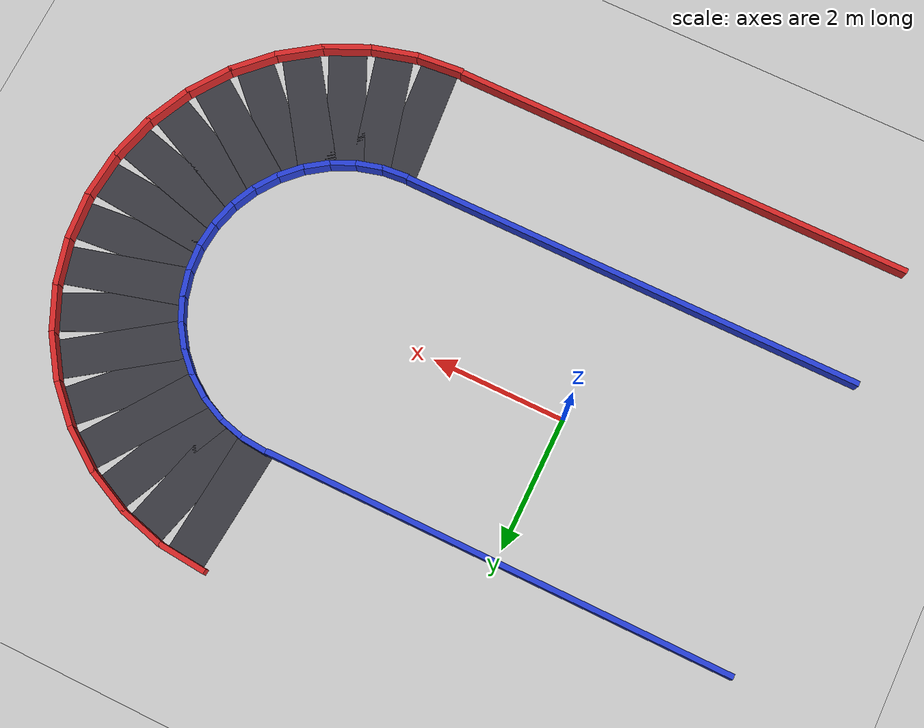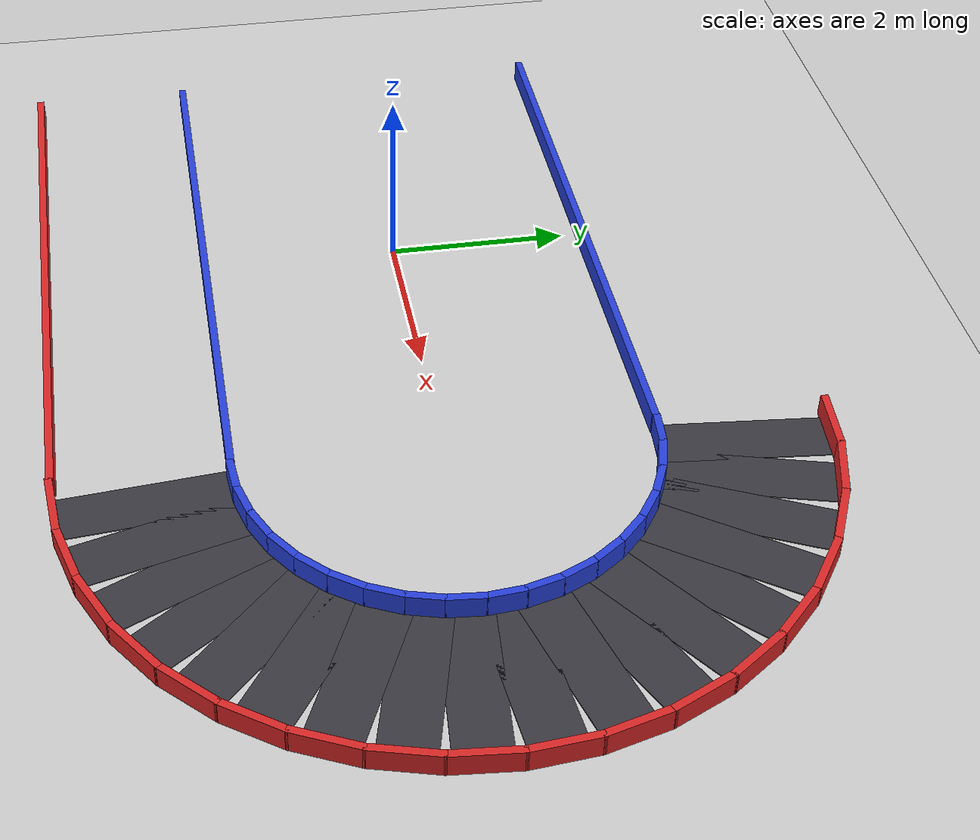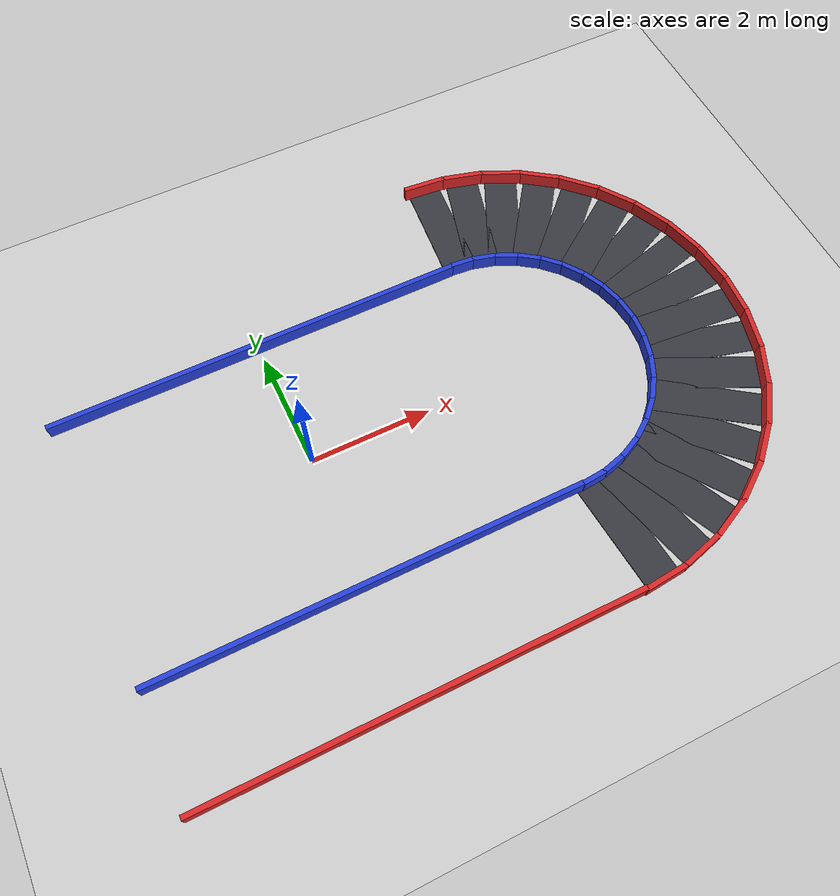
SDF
<sdf version="1.6">
 <world name="mini4wd_single_track">
  <include><uri>model://ground_plane</uri></include>
  <include><uri>model://sun</uri></include>
  <model name="flr_c_e_0">
   <static>true</static>
   <pose>3.770 -3.088 0.005 0 0 0.087</pose>
   <link name="l">
    <collision name="c"><geometry><box><size>0.568 1.8 0.01</size></box></geometry></collision>
    <visual name="v">
     <geometry><box><size>0.568 1.8 0.01</size></box></geometry>
     <material><ambient>0.22 0.22 0.25 1</ambient><diffuse>0.22 0.22 0.25 1</diffuse></material>
    </visual>
   </link>
  </model>
  <model name="flr_c_e_1">
   <static>true</static>
   <pose>4.302 -2.994 0.005 0 0 0.262</pose>
   <link name="l">
    <collision name="c"><geometry><box><size>0.568 1.8 0.01</size></box></geometry></collision>
    <visual name="v">
     <geometry><box><size>0.568 1.8 0.01</size></box></geometry>
     <material><ambient>0.22 0.22 0.25 1</ambient><diffuse>0.22 0.22 0.25 1</diffuse></material>
    </visual>
   </link>
  </model>
  <model name="flr_c_e_2">
   <static>true</static>
   <pose>4.810 -2.810 0.005 0 0 0.436</pose>
   <link name="l">
    <collision name="c"><geometry><box><size>0.568 1.8 0.01</size></box></geometry></collision>
    <visual name="v">
     <geometry><box><size>0.568 1.8 0.01</size></box></geometry>
     <material><ambient>0.22 0.22 0.25 1</ambient><diffuse>0.22 0.22 0.25 1</diffuse></material>
    </visual>
   </link>
  </model>
  <model name="flr_c_e_3">
   <static>true</static>
   <pose>5.278 -2.539 0.005 0 0 0.611</pose>
   <link name="l">
    <collision name="c"><geometry><box><size>0.568 1.8 0.01</size></box></geometry></collision>
    <visual name="v">
     <geometry><box><size>0.568 1.8 0.01</size></box></geometry>
     <material><ambient>0.22 0.22 0.25 1</ambient><diffuse>0.22 0.22 0.25 1</diffuse></material>
    </visual>
   </link>
  </model>
  <model name="flr_c_e_4">
   <static>true</static>
   <pose>5.692 -2.192 0.005 0 0 0.785</pose>
   <link name="l">
    <collision name="c"><geometry><box><size>0.568 1.8 0.01</size></box></geometry></collision>
    <visual name="v">
     <geometry><box><size>0.568 1.8 0.01</size></box></geometry>
     <material><ambient>0.22 0.22 0.25 1</ambient><diffuse>0.22 0.22 0.25 1</diffuse></material>
    </visual>
   </link>
  </model>
  <model name="flr_c_e_5">
   <static>true</static>
   <pose>6.039 -1.778 0.005 0 0 0.960</pose>
   <link name="l">
    <collision name="c"><geometry><box><size>0.568 1.8 0.01</size></box></geometry></collision>
    <visual name="v">
     <geometry><box><size>0.568 1.8 0.01</size></box></geometry>
     <material><ambient>0.22 0.22 0.25 1</ambient><diffuse>0.22 0.22 0.25 1</diffuse></material>
    </visual>
   </link>
  </model>
  <model name="flr_c_e_6">
   <static>true</static>
   <pose>6.310 -1.310 0.005 0 0 1.134</pose>
   <link name="l">
    <collision name="c"><geometry><box><size>0.568 1.8 0.01</size></box></geometry></collision>
    <visual name="v">
     <geometry><box><size>0.568 1.8 0.01</size></box></geometry>
     <material><ambient>0.22 0.22 0.25 1</ambient><diffuse>0.22 0.22 0.25 1</diffuse></material>
    </visual>
   </link>
  </model>
  <model name="flr_c_e_7">
   <static>true</static>
   <pose>6.494 -0.802 0.005 0 0 1.309</pose>
   <link name="l">
    <collision name="c"><geometry><box><size>0.568 1.8 0.01</size></box></geometry></collision>
    <visual name="v">
     <geometry><box><size>0.568 1.8 0.01</size></box></geometry>
     <material><ambient>0.22 0.22 0.25 1</ambient><diffuse>0.22 0.22 0.25 1</diffuse></material>
    </visual>
   </link>
  </model>
  <model name="flr_c_e_8">
   <static>true</static>
   <pose>6.588 -0.270 0.005 0 0 1.484</pose>
   <link name="l">
    <collision name="c"><geometry><box><size>0.568 1.8 0.01</size></box></geometry></collision>
    <visual name="v">
     <geometry><box><size>0.568 1.8 0.01</size></box></geometry>
     <material><ambient>0.22 0.22 0.25 1</ambient><diffuse>0.22 0.22 0.25 1</diffuse></material>
    </visual>
   </link>
  </model>
  <model name="flr_c_e_9">
   <static>true</static>
   <pose>6.588 0.270 0.005 0 0 1.658</pose>
   <link name="l">
    <collision name="c"><geometry><box><size>0.568 1.8 0.01</size></box></geometry></collision>
    <visual name="v">
     <geometry><box><size>0.568 1.8 0.01</size></box></geometry>
     <material><ambient>0.22 0.22 0.25 1</ambient><diffuse>0.22 0.22 0.25 1</diffuse></material>
    </visual>
   </link>
  </model>
  <model name="flr_c_e_10">
   <static>true</static>
   <pose>6.494 0.802 0.005 0 0 1.833</pose>
   <link name="l">
    <collision name="c"><geometry><box><size>0.568 1.8 0.01</size></box></geometry></collision>
    <visual name="v">
     <geometry><box><size>0.568 1.8 0.01</size></box></geometry>
     <material><ambient>0.22 0.22 0.25 1</ambient><diffuse>0.22 0.22 0.25 1</diffuse></material>
    </visual>
   </link>
  </model>
  <model name="flr_c_e_11">
   <static>true</static>
   <pose>6.310 1.310 0.005 0 0 2.007</pose>
   <link name="l">
    <collision name="c"><geometry><box><size>0.568 1.8 0.01</size></box></geometry></collision>
    <visual name="v">
     <geometry><box><size>0.568 1.8 0.01</size></box></geometry>
     <material><ambient>0.22 0.22 0.25 1</ambient><diffuse>0.22 0.22 0.25 1</diffuse></material>
    </visual>
   </link>
  </model>
  <model name="flr_c_e_12">
   <static>true</static>
   <pose>6.039 1.778 0.005 0 0 2.182</pose>
   <link name="l">
    <collision name="c"><geometry><box><size>0.568 1.8 0.01</size></box></geometry></collision>
    <visual name="v">
     <geometry><box><size>0.568 1.8 0.01</size></box></geometry>
     <material><ambient>0.22 0.22 0.25 1</ambient><diffuse>0.22 0.22 0.25 1</diffuse></material>
    </visual>
   </link>
  </model>
  <model name="flr_c_e_13">
   <static>true</static>
   <pose>5.692 2.192 0.005 0 0 2.356</pose>
   <link name="l">
    <collision name="c"><geometry><box><size>0.568 1.8 0.01</size></box></geometry></collision>
    <visual name="v">
     <geometry><box><size>0.568 1.8 0.01</size></box></geometry>
     <material><ambient>0.22 0.22 0.25 1</ambient><diffuse>0.22 0.22 0.25 1</diffuse></material>
    </visual>
   </link>
  </model>
  <model name="flr_c_e_14">
   <static>true</static>
   <pose>5.278 2.539 0.005 0 0 2.531</pose>
   <link name="l">
    <collision name="c"><geometry><box><size>0.568 1.8 0.01</size></box></geometry></collision>
    <visual name="v">
     <geometry><box><size>0.568 1.8 0.01</size></box></geometry>
     <material><ambient>0.22 0.22 0.25 1</ambient><diffuse>0.22 0.22 0.25 1</diffuse></material>
    </visual>
   </link>
  </model>
  <model name="flr_c_e_15">
   <static>true</static>
   <pose>4.810 2.810 0.005 0 0 2.705</pose>
   <link name="l">
    <collision name="c"><geometry><box><size>0.568 1.8 0.01</size></box></geometry></collision>
    <visual name="v">
     <geometry><box><size>0.568 1.8 0.01</size></box></geometry>
     <material><ambient>0.22 0.22 0.25 1</ambient><diffuse>0.22 0.22 0.25 1</diffuse></material>
    </visual>
   </link>
  </model>
  <model name="flr_c_e_16">
   <static>true</static>
   <pose>4.302 2.994 0.005 0 0 2.880</pose>
   <link name="l">
    <collision name="c"><geometry><box><size>0.568 1.8 0.01</size></box></geometry></collision>
    <visual name="v">
     <geometry><box><size>0.568 1.8 0.01</size></box></geometry>
     <material><ambient>0.22 0.22 0.25 1</ambient><diffuse>0.22 0.22 0.25 1</diffuse></material>
    </visual>
   </link>
  </model>
  <model name="flr_c_e_17">
   <static>true</static>
   <pose>3.770 3.088 0.005 0 0 3.054</pose>
   <link name="l">
    <collision name="c"><geometry><box><size>0.568 1.8 0.01</size></box></geometry></collision>
    <visual name="v">
     <geometry><box><size>0.568 1.8 0.01</size></box></geometry>
     <material><ambient>0.22 0.22 0.25 1</ambient><diffuse>0.22 0.22 0.25 1</diffuse></material>
    </visual>
   </link>
  </model>
  <model name="w_out_s">
   <static>true</static>
   <pose>0 -4.000 0.125 0 0 0</pose>
   <link name="l">
    <collision name="c"><geometry><box><size>7.0 0.08 0.25</size></box></geometry></collision>
    <visual name="v">
     <geometry><box><size>7.0 0.08 0.25</size></box></geometry>
     <material><ambient>0.85 0.15 0.15 1</ambient><diffuse>0.85 0.15 0.15 1</diffuse></material>
    </visual>
   </link>
  </model>
  <model name="w_in_n">
   <static>true</static>
   <pose>0 2.200 0.125 0 0 0</pose>
   <link name="l">
    <collision name="c"><geometry><box><size>7.0 0.08 0.25</size></box></geometry></collision>
    <visual name="v">
     <geometry><box><size>7.0 0.08 0.25</size></box></geometry>
     <material><ambient>0.15 0.25 0.85 1</ambient><diffuse>0.15 0.25 0.85 1</diffuse></material>
    </visual>
   </link>
  </model>
  <model name="w_in_s">
   <static>true</static>
   <pose>0 -2.200 0.125 0 0 0</pose>
   <link name="l">
    <collision name="c"><geometry><box><size>7.0 0.08 0.25</size></box></geometry></collision>
    <visual name="v">
     <geometry><box><size>7.0 0.08 0.25</size></box></geometry>
     <material><ambient>0.15 0.25 0.85 1</ambient><diffuse>0.15 0.25 0.85 1</diffuse></material>
    </visual>
   </link>
  </model>
  <model name="w_crv_out_e_0">
   <static>true</static>
   <pose>3.849 -3.985 0.125 0 0 0.087</pose>
   <link name="l">
    <collision name="c"><geometry><box><size>0.733 0.08 0.25</size></box></geometry></collision>
    <visual name="v">
     <geometry><box><size>0.733 0.08 0.25</size></box></geometry>
     <material><ambient>0.85 0.15 0.15 1</ambient><diffuse>0.85 0.15 0.15 1</diffuse></material>
    </visual>
   </link>
  </model>
  <model name="w_crv_in_e_0">
   <static>true</static>
   <pose>3.692 -2.192 0.125 0 0 0.087</pose>
   <link name="l">
    <collision name="c"><geometry><box><size>0.403 0.08 0.25</size></box></geometry></collision>
    <visual name="v">
     <geometry><box><size>0.403 0.08 0.25</size></box></geometry>
     <material><ambient>0.15 0.25 0.85 1</ambient><diffuse>0.15 0.25 0.85 1</diffuse></material>
    </visual>
   </link>
  </model>
  <model name="w_crv_out_e_1">
   <static>true</static>
   <pose>4.535 -3.864 0.125 0 0 0.262</pose>
   <link name="l">
    <collision name="c"><geometry><box><size>0.733 0.08 0.25</size></box></geometry></collision>
    <visual name="v">
     <geometry><box><size>0.733 0.08 0.25</size></box></geometry>
     <material><ambient>0.85 0.15 0.15 1</ambient><diffuse>0.85 0.15 0.15 1</diffuse></material>
    </visual>
   </link>
  </model>
  <model name="w_crv_in_e_1">
   <static>true</static>
   <pose>4.069 -2.125 0.125 0 0 0.262</pose>
   <link name="l">
    <collision name="c"><geometry><box><size>0.403 0.08 0.25</size></box></geometry></collision>
    <visual name="v">
     <geometry><box><size>0.403 0.08 0.25</size></box></geometry>
     <material><ambient>0.15 0.25 0.85 1</ambient><diffuse>0.15 0.25 0.85 1</diffuse></material>
    </visual>
   </link>
  </model>
  <model name="w_crv_out_e_2">
   <static>true</static>
   <pose>5.190 -3.625 0.125 0 0 0.436</pose>
   <link name="l">
    <collision name="c"><geometry><box><size>0.733 0.08 0.25</size></box></geometry></collision>
    <visual name="v">
     <geometry><box><size>0.733 0.08 0.25</size></box></geometry>
     <material><ambient>0.85 0.15 0.15 1</ambient><diffuse>0.85 0.15 0.15 1</diffuse></material>
    </visual>
   </link>
  </model>
  <model name="w_crv_in_e_2">
   <static>true</static>
   <pose>4.430 -1.994 0.125 0 0 0.436</pose>
   <link name="l">
    <collision name="c"><geometry><box><size>0.403 0.08 0.25</size></box></geometry></collision>
    <visual name="v">
     <geometry><box><size>0.403 0.08 0.25</size></box></geometry>
     <material><ambient>0.15 0.25 0.85 1</ambient><diffuse>0.15 0.25 0.85 1</diffuse></material>
    </visual>
   </link>
  </model>
  <model name="w_crv_out_e_3">
   <static>true</static>
   <pose>5.794 -3.277 0.125 0 0 0.611</pose>
   <link name="l">
    <collision name="c"><geometry><box><size>0.733 0.08 0.25</size></box></geometry></collision>
    <visual name="v">
     <geometry><box><size>0.733 0.08 0.25</size></box></geometry>
     <material><ambient>0.85 0.15 0.15 1</ambient><diffuse>0.85 0.15 0.15 1</diffuse></material>
    </visual>
   </link>
  </model>
  <model name="w_crv_in_e_3">
   <static>true</static>
   <pose>4.762 -1.802 0.125 0 0 0.611</pose>
   <link name="l">
    <collision name="c"><geometry><box><size>0.403 0.08 0.25</size></box></geometry></collision>
    <visual name="v">
     <geometry><box><size>0.403 0.08 0.25</size></box></geometry>
     <material><ambient>0.15 0.25 0.85 1</ambient><diffuse>0.15 0.25 0.85 1</diffuse></material>
    </visual>
   </link>
  </model>
  <model name="w_crv_out_e_4">
   <static>true</static>
   <pose>6.328 -2.828 0.125 0 0 0.785</pose>
   <link name="l">
    <collision name="c"><geometry><box><size>0.733 0.08 0.25</size></box></geometry></collision>
    <visual name="v">
     <geometry><box><size>0.733 0.08 0.25</size></box></geometry>
     <material><ambient>0.85 0.15 0.15 1</ambient><diffuse>0.85 0.15 0.15 1</diffuse></material>
    </visual>
   </link>
  </model>
  <model name="w_crv_in_e_4">
   <static>true</static>
   <pose>5.056 -1.556 0.125 0 0 0.785</pose>
   <link name="l">
    <collision name="c"><geometry><box><size>0.403 0.08 0.25</size></box></geometry></collision>
    <visual name="v">
     <geometry><box><size>0.403 0.08 0.25</size></box></geometry>
     <material><ambient>0.15 0.25 0.85 1</ambient><diffuse>0.15 0.25 0.85 1</diffuse></material>
    </visual>
   </link>
  </model>
  <model name="w_crv_out_e_5">
   <static>true</static>
   <pose>6.777 -2.294 0.125 0 0 0.960</pose>
   <link name="l">
    <collision name="c"><geometry><box><size>0.733 0.08 0.25</size></box></geometry></collision>
    <visual name="v">
     <geometry><box><size>0.733 0.08 0.25</size></box></geometry>
     <material><ambient>0.85 0.15 0.15 1</ambient><diffuse>0.85 0.15 0.15 1</diffuse></material>
    </visual>
   </link>
  </model>
  <model name="w_crv_in_e_5">
   <static>true</static>
   <pose>5.302 -1.262 0.125 0 0 0.960</pose>
   <link name="l">
    <collision name="c"><geometry><box><size>0.403 0.08 0.25</size></box></geometry></collision>
    <visual name="v">
     <geometry><box><size>0.403 0.08 0.25</size></box></geometry>
     <material><ambient>0.15 0.25 0.85 1</ambient><diffuse>0.15 0.25 0.85 1</diffuse></material>
    </visual>
   </link>
  </model>
  <model name="w_crv_out_e_6">
   <static>true</static>
   <pose>7.125 -1.690 0.125 0 0 1.134</pose>
   <link name="l">
    <collision name="c"><geometry><box><size>0.733 0.08 0.25</size></box></geometry></collision>
    <visual name="v">
     <geometry><box><size>0.733 0.08 0.25</size></box></geometry>
     <material><ambient>0.85 0.15 0.15 1</ambient><diffuse>0.85 0.15 0.15 1</diffuse></material>
    </visual>
   </link>
  </model>
  <model name="w_crv_in_e_6">
   <static>true</static>
   <pose>5.494 -0.930 0.125 0 0 1.134</pose>
   <link name="l">
    <collision name="c"><geometry><box><size>0.403 0.08 0.25</size></box></geometry></collision>
    <visual name="v">
     <geometry><box><size>0.403 0.08 0.25</size></box></geometry>
     <material><ambient>0.15 0.25 0.85 1</ambient><diffuse>0.15 0.25 0.85 1</diffuse></material>
    </visual>
   </link>
  </model>
  <model name="w_crv_out_e_7">
   <static>true</static>
   <pose>7.364 -1.035 0.125 0 0 1.309</pose>
   <link name="l">
    <collision name="c"><geometry><box><size>0.733 0.08 0.25</size></box></geometry></collision>
    <visual name="v">
     <geometry><box><size>0.733 0.08 0.25</size></box></geometry>
     <material><ambient>0.85 0.15 0.15 1</ambient><diffuse>0.85 0.15 0.15 1</diffuse></material>
    </visual>
   </link>
  </model>
  <model name="w_crv_in_e_7">
   <static>true</static>
   <pose>5.625 -0.569 0.125 0 0 1.309</pose>
   <link name="l">
    <collision name="c"><geometry><box><size>0.403 0.08 0.25</size></box></geometry></collision>
    <visual name="v">
     <geometry><box><size>0.403 0.08 0.25</size></box></geometry>
     <material><ambient>0.15 0.25 0.85 1</ambient><diffuse>0.15 0.25 0.85 1</diffuse></material>
    </visual>
   </link>
  </model>
  <model name="w_crv_out_e_8">
   <static>true</static>
   <pose>7.485 -0.349 0.125 0 0 1.484</pose>
   <link name="l">
    <collision name="c"><geometry><box><size>0.733 0.08 0.25</size></box></geometry></collision>
    <visual name="v">
     <geometry><box><size>0.733 0.08 0.25</size></box></geometry>
     <material><ambient>0.85 0.15 0.15 1</ambient><diffuse>0.85 0.15 0.15 1</diffuse></material>
    </visual>
   </link>
  </model>
  <model name="w_crv_in_e_8">
   <static>true</static>
   <pose>5.692 -0.192 0.125 0 0 1.484</pose>
   <link name="l">
    <collision name="c"><geometry><box><size>0.403 0.08 0.25</size></box></geometry></collision>
    <visual name="v">
     <geometry><box><size>0.403 0.08 0.25</size></box></geometry>
     <material><ambient>0.15 0.25 0.85 1</ambient><diffuse>0.15 0.25 0.85 1</diffuse></material>
    </visual>
   </link>
  </model>
  <model name="w_crv_out_e_9">
   <static>true</static>
   <pose>7.485 0.349 0.125 0 0 1.658</pose>
   <link name="l">
    <collision name="c"><geometry><box><size>0.733 0.08 0.25</size></box></geometry></collision>
    <visual name="v">
     <geometry><box><size>0.733 0.08 0.25</size></box></geometry>
     <material><ambient>0.85 0.15 0.15 1</ambient><diffuse>0.85 0.15 0.15 1</diffuse></material>
    </visual>
   </link>
  </model>
  <model name="w_crv_in_e_9">
   <static>true</static>
   <pose>5.692 0.192 0.125 0 0 1.658</pose>
   <link name="l">
    <collision name="c"><geometry><box><size>0.403 0.08 0.25</size></box></geometry></collision>
    <visual name="v">
     <geometry><box><size>0.403 0.08 0.25</size></box></geometry>
     <material><ambient>0.15 0.25 0.85 1</ambient><diffuse>0.15 0.25 0.85 1</diffuse></material>
    </visual>
   </link>
  </model>
  <model name="w_crv_out_e_10">
   <static>true</static>
   <pose>7.364 1.035 0.125 0 0 1.833</pose>
   <link name="l">
    <collision name="c"><geometry><box><size>0.733 0.08 0.25</size></box></geometry></collision>
    <visual name="v">
     <geometry><box><size>0.733 0.08 0.25</size></box></geometry>
     <material><ambient>0.85 0.15 0.15 1</ambient><diffuse>0.85 0.15 0.15 1</diffuse></material>
    </visual>
   </link>
  </model>
  <model name="w_crv_in_e_10">
   <static>true</static>
   <pose>5.625 0.569 0.125 0 0 1.833</pose>
   <link name="l">
    <collision name="c"><geometry><box><size>0.403 0.08 0.25</size></box></geometry></collision>
    <visual name="v">
     <geometry><box><size>0.403 0.08 0.25</size></box></geometry>
     <material><ambient>0.15 0.25 0.85 1</ambient><diffuse>0.15 0.25 0.85 1</diffuse></material>
    </visual>
   </link>
  </model>
  <model name="w_crv_out_e_11">
   <static>true</static>
   <pose>7.125 1.690 0.125 0 0 2.007</pose>
   <link name="l">
    <collision name="c"><geometry><box><size>0.733 0.08 0.25</size></box></geometry></collision>
    <visual name="v">
     <geometry><box><size>0.733 0.08 0.25</size></box></geometry>
     <material><ambient>0.85 0.15 0.15 1</ambient><diffuse>0.85 0.15 0.15 1</diffuse></material>
    </visual>
   </link>
  </model>
  <model name="w_crv_in_e_11">
   <static>true</static>
   <pose>5.494 0.930 0.125 0 0 2.007</pose>
   <link name="l">
    <collision name="c"><geometry><box><size>0.403 0.08 0.25</size></box></geometry></collision>
    <visual name="v">
     <geometry><box><size>0.403 0.08 0.25</size></box></geometry>
     <material><ambient>0.15 0.25 0.85 1</ambient><diffuse>0.15 0.25 0.85 1</diffuse></material>
    </visual>
   </link>
  </model>
  <model name="w_crv_out_e_12">
   <static>true</static>
   <pose>6.777 2.294 0.125 0 0 2.182</pose>
   <link name="l">
    <collision name="c"><geometry><box><size>0.733 0.08 0.25</size></box></geometry></collision>
    <visual name="v">
     <geometry><box><size>0.733 0.08 0.25</size></box></geometry>
     <material><ambient>0.85 0.15 0.15 1</ambient><diffuse>0.85 0.15 0.15 1</diffuse></material>
    </visual>
   </link>
  </model>
  <model name="w_crv_in_e_12">
   <static>true</static>
   <pose>5.302 1.262 0.125 0 0 2.182</pose>
   <link name="l">
    <collision name="c"><geometry><box><size>0.403 0.08 0.25</size></box></geometry></collision>
    <visual name="v">
     <geometry><box><size>0.403 0.08 0.25</size></box></geometry>
     <material><ambient>0.15 0.25 0.85 1</ambient><diffuse>0.15 0.25 0.85 1</diffuse></material>
    </visual>
   </link>
  </model>
  <model name="w_crv_out_e_13">
   <static>true</static>
   <pose>6.328 2.828 0.125 0 0 2.356</pose>
   <link name="l">
    <collision name="c"><geometry><box><size>0.733 0.08 0.25</size></box></geometry></collision>
    <visual name="v">
     <geometry><box><size>0.733 0.08 0.25</size></box></geometry>
     <material><ambient>0.85 0.15 0.15 1</ambient><diffuse>0.85 0.15 0.15 1</diffuse></material>
    </visual>
   </link>
  </model>
  <model name="w_crv_in_e_13">
   <static>true</static>
   <pose>5.056 1.556 0.125 0 0 2.356</pose>
   <link name="l">
    <collision name="c"><geometry><box><size>0.403 0.08 0.25</size></box></geometry></collision>
    <visual name="v">
     <geometry><box><size>0.403 0.08 0.25</size></box></geometry>
     <material><ambient>0.15 0.25 0.85 1</ambient><diffuse>0.15 0.25 0.85 1</diffuse></material>
    </visual>
   </link>
  </model>
  <model name="w_crv_out_e_14">
   <static>true</static>
   <pose>5.794 3.277 0.125 0 0 2.531</pose>
   <link name="l">
    <collision name="c"><geometry><box><size>0.733 0.08 0.25</size></box></geometry></collision>
    <visual name="v">
     <geometry><box><size>0.733 0.08 0.25</size></box></geometry>
     <material><ambient>0.85 0.15 0.15 1</ambient><diffuse>0.85 0.15 0.15 1</diffuse></material>
    </visual>
   </link>
  </model>
  <model name="w_crv_in_e_14">
   <static>true</static>
   <pose>4.762 1.802 0.125 0 0 2.531</pose>
   <link name="l">
    <collision name="c"><geometry><box><size>0.403 0.08 0.25</size></box></geometry></collision>
    <visual name="v">
     <geometry><box><size>0.403 0.08 0.25</size></box></geometry>
     <material><ambient>0.15 0.25 0.85 1</ambient><diffuse>0.15 0.25 0.85 1</diffuse></material>
    </visual>
   </link>
  </model>
  <model name="w_crv_out_e_15">
   <static>true</static>
   <pose>5.190 3.625 0.125 0 0 2.705</pose>
   <link name="l">
    <collision name="c"><geometry><box><size>0.733 0.08 0.25</size></box></geometry></collision>
    <visual name="v">
     <geometry><box><size>0.733 0.08 0.25</size></box></geometry>
     <material><ambient>0.85 0.15 0.15 1</ambient><diffuse>0.85 0.15 0.15 1</diffuse></material>
    </visual>
   </link>
  </model>
  <model name="w_crv_in_e_15">
   <static>true</static>
   <pose>4.430 1.994 0.125 0 0 2.705</pose>
   <link name="l">
    <collision name="c"><geometry><box><size>0.403 0.08 0.25</size></box></geometry></collision>
    <visual name="v">
     <geometry><box><size>0.403 0.08 0.25</size></box></geometry>
     <material><ambient>0.15 0.25 0.85 1</ambient><diffuse>0.15 0.25 0.85 1</diffuse></material>
    </visual>
   </link>
  </model>
  <model name="w_crv_out_e_16">
   <static>true</static>
   <pose>4.535 3.864 0.125 0 0 2.880</pose>
   <link name="l">
    <collision name="c"><geometry><box><size>0.733 0.08 0.25</size></box></geometry></collision>
    <visual name="v">
     <geometry><box><size>0.733 0.08 0.25</size></box></geometry>
     <material><ambient>0.85 0.15 0.15 1</ambient><diffuse>0.85 0.15 0.15 1</diffuse></material>
    </visual>
   </link>
  </model>
  <model name="w_crv_in_e_16">
   <static>true</static>
   <pose>4.069 2.125 0.125 0 0 2.880</pose>
   <link name="l">
    <collision name="c"><geometry><box><size>0.403 0.08 0.25</size></box></geometry></collision>
    <visual name="v">
     <geometry><box><size>0.403 0.08 0.25</size></box></geometry>
     <material><ambient>0.15 0.25 0.85 1</ambient><diffuse>0.15 0.25 0.85 1</diffuse></material>
    </visual>
   </link>
  </model>
  <model name="w_crv_out_e_17">
   <static>true</static>
   <pose>3.849 3.985 0.125 0 0 3.054</pose>
   <link name="l">
    <collision name="c"><geometry><box><size>0.733 0.08 0.25</size></box></geometry></collision>
    <visual name="v">
     <geometry><box><size>0.733 0.08 0.25</size></box></geometry>
     <material><ambient>0.85 0.15 0.15 1</ambient><diffuse>0.85 0.15 0.15 1</diffuse></material>
    </visual>
   </link>
  </model>
  <model name="w_crv_in_e_17">
   <static>true</static>
   <pose>3.692 2.192 0.125 0 0 3.054</pose>
   <link name="l">
    <collision name="c"><geometry><box><size>0.403 0.08 0.25</size></box></geometry></collision>
    <visual name="v">
     <geometry><box><size>0.403 0.08 0.25</size></box></geometry>
     <material><ambient>0.15 0.25 0.85 1</ambient><diffuse>0.15 0.25 0.85 1</diffuse></material>
    </visual>
   </link>
  </model>
 </world>
</sdf>
